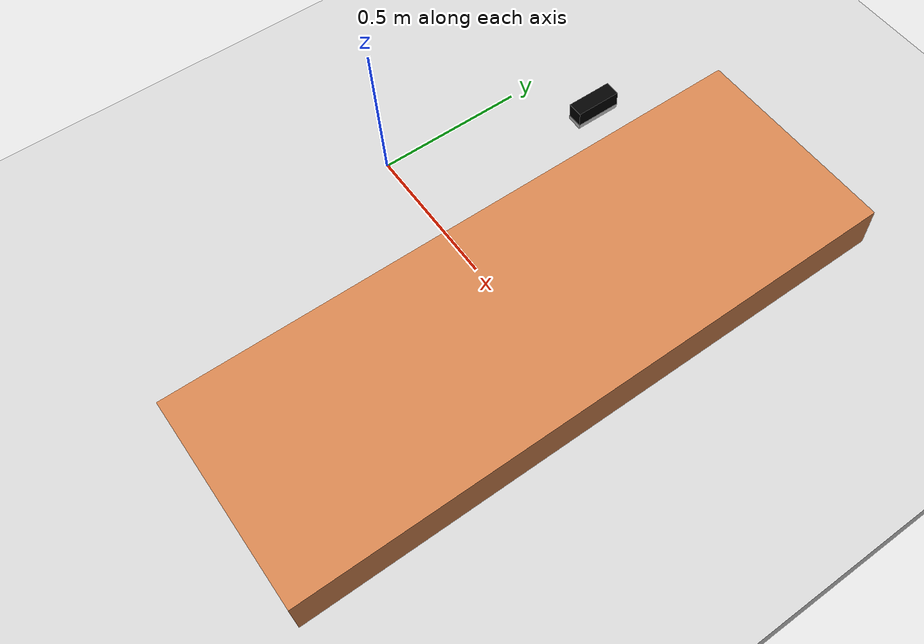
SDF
<sdf version="1.6">
 <world name="visual_servoing">
  <physics name="1ms" type="ignored">
   <max_step_size>0.001</max_step_size>
   <real_time_factor>1.0</real_time_factor>
  </physics>
  <plugin filename="ignition-gazebo-physics-system" name="gz::sim::systems::Physics"/>
  <plugin filename="ignition-gazebo-sensors-system" name="gz::sim::systems::Sensors">
   <render_engine>ogre2</render_engine>
  </plugin>
  <plugin filename="ignition-gazebo-user-commands-system" name="ignition::gazebo::systems::UserCommands"/>
  <plugin filename="ignition-gazebo-scene-broadcaster-system" name="gz::sim::systems::SceneBroadcaster"/>
  <light type="directional" name="sun">
   <pose>0 0 10 0 0 0</pose>
   <diffuse>0.8 0.8 0.8 1</diffuse>
   <specular>0.2 0.2 0.2 1</specular>
   <attenuation>
    <range>1000</range>
    <constant>0.9</constant>
    <linear>0.01</linear>
    <quadratic>0.001</quadratic>
   </attenuation>
   <direction>-0.5 0.1 -0.9</direction>
  </light>
  <model name="ground_plane">
   <static>true</static>
   <link name="link">
    <collision name="collision"><geometry><box><size>20 20 0.1</size></box></geometry></collision>
    <visual name="visual">
     <geometry><box><size>20 20 0.1</size></box></geometry>
     <material>
      <ambient>0.8 0.8 0.8 1</ambient>
      <diffuse>0.8 0.8 0.8 1</diffuse>
      <specular>0.8 0.8 0.8 1</specular>
     </material>
    </visual>
   </link>
  </model>
  <model name="rgbd_camera">
   <joint name="joint_world" type="fixed"><parent>world</parent><child>rgbd_camera_lens</child></joint>
   <link name="rgbd_camera_lens">
    <pose>1.0 0 1.2 0 1.5708 0</pose>
    <inertial><mass>0.05</mass></inertial>
    <collision name="collision"><geometry><box><size>0.01 0.0936 0.0318</size></box></geometry></collision>
    <visual name="visual">
     <geometry><box><size>0.01 0.0936 0.0318</size></box></geometry>
     <material>
      <ambient>0.85 0.85 0.85 1</ambient>
      <diffuse>0.85 0.85 0.85 1</diffuse>
      <specular>0.95 0.95 0.95 1</specular>
     </material>
    </visual>
    <sensor name="rgbd_camera" type="rgbd_camera">
     <camera>
      <horizontal_fov>1.9199</horizontal_fov>
      <image><width>960</width><height>600</height><format>R8G8B8</format></image>
      <clip><near>0.01</near><far>15</far></clip>
      <depth_camera><clip><near>0.1</near><far>8</far></clip></depth_camera>
     </camera>
     <always_on>1</always_on>
     <update_rate>60</update_rate>
     <visualize>true</visualize>
     <topic>rgbd_camera</topic>
     <enable_metrics>true</enable_metrics>
    </sensor>
   </link>
   <joint name="joint_camera" type="fixed"><parent>world</parent><child>rgbd_camera_body</child></joint>
   <link name="rgbd_camera_body">
    <pose>1.0 0 1.22 0 1.5708 0</pose>
    <inertial><mass>0.101</mass></inertial>
    <collision name="collision"><geometry><box><size>0.0324 0.0936 0.0318</size></box></geometry></collision>
    <visual name="visual">
     <geometry><box><size>0.0324 0.0936 0.0318</size></box></geometry>
     <material>
      <ambient>0.0 0.0 0.0 1</ambient>
      <diffuse>0.0 0.0 0.0 1</diffuse>
      <specular>0.1 0.1 0.1 1</specular>
     </material>
    </visual>
   </link>
  </model>
  <joint name="joint_table1" type="screw"><parent>world</parent><child>table1</child></joint>
  <model name="table1">
   <static>true</static>
   <pose>0.8 0 0.1 0 0 0</pose>
   <link name="table1_link">
    <inertial>
     <inertia><ixx>1</ixx><ixy>0</ixy><ixz>0</ixz><iyy>1</iyy><iyz>0</iyz><izz>1</izz></inertia>
     <mass>1.0</mass>
    </inertial>
    <collision name="table1_collision"><geometry><box><size>0.7 2.0 0.2</size></box></geometry></collision>
    <visual name="table1_visual">
     <geometry><box><size>0.7 2.0 0.2</size></box></geometry>
     <material>
      <ambient>0.6 0.4 0.2 1</ambient>
      <diffuse>0.8 0.5 0.3 1</diffuse>
      <specular>0.1 0.1 0.1 1</specular>
     </material>
    </visual>
   </link>
  </model>
  <joint name="joint_box1" type="screw"><parent>world</parent><child>markerbox1</child></joint>
  <joint name="joint_box2" type="screw"><parent>world</parent><child>markerbox2</child></joint>
  <joint name="joint_box3" type="screw"><parent>world</parent><child>markerbox3</child></joint>
 </world>
</sdf>
